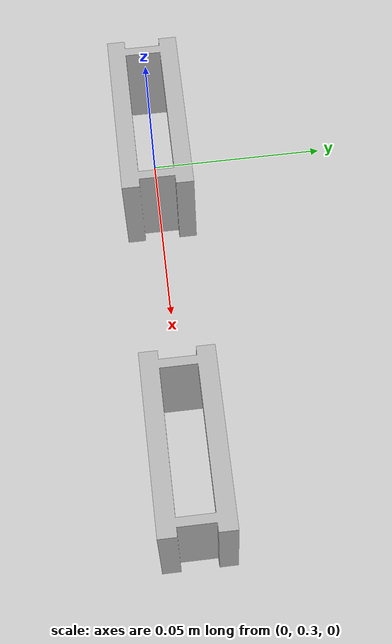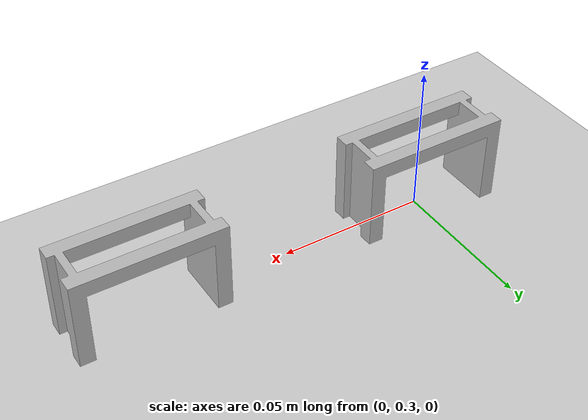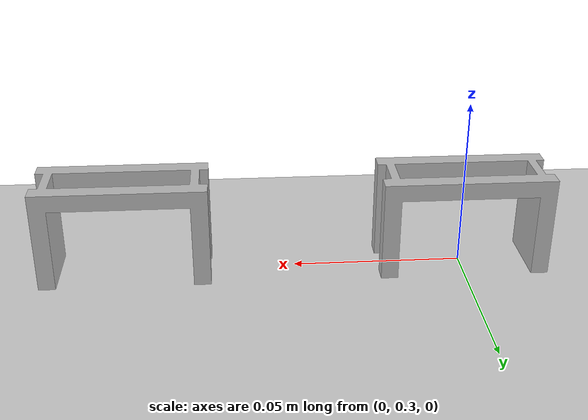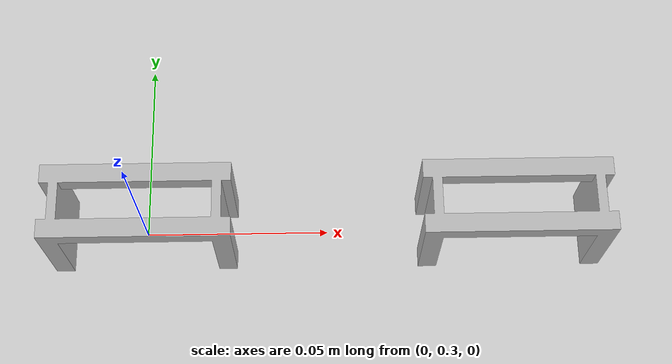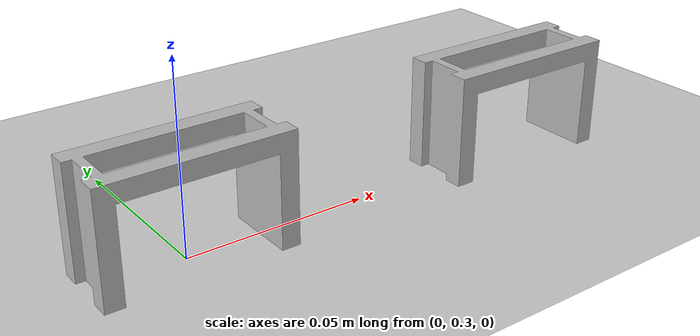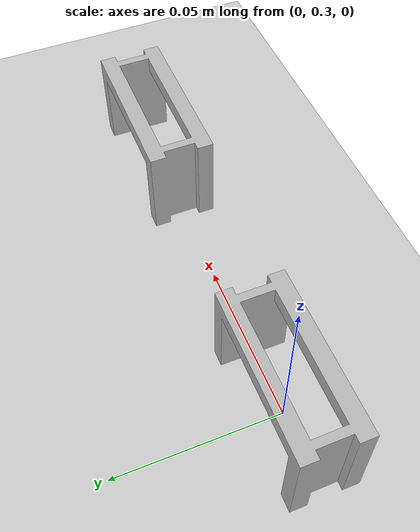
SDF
<?xml version="1.0" ?>
<sdf version="1.4">
  <world name="default">
    <include>
      <uri>model://ground_plane</uri>
    </include>
    <include>
      <uri>model://sun</uri>
    </include>

    <include>
      <uri>model://block_for_arm</uri>
      <name>number_board</name>
      <pose>0 0.3 0 0 0 0</pose>
      <static>false</static>
    </include>

    <include>
      <uri>model://block_for_arm</uri>
      <name>number_board</name>
      <pose>0.1 0.3 0 0 0 0</pose>
      <static>false</static>
    </include>

  </world>
</sdf>

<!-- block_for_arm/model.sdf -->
<sdf version="1.5">
  <model name="block_for_arm">
    <static>0</static>
    <link name="link">
      <inertial>
        <mass>0.01</mass>
        <pose> 0 0 0.015 0 0</pose>
        <inertia>
          <ixx>0.01227</ixx>
          <ixy>0.0</ixy>
          <ixz>0.0</ixz>
          <iyy>0.03799</iyy>
          <iyz>0.0</iyz>
          <izz>0.03551</izz>
        </inertia>
      </inertial>
      <collision name="collision">
        <geometry>
          <mesh>
             <scale>0.001 0.001 0.001</scale>
             <uri>model://block_for_arm/meshes/block.stl</uri>
           </mesh>
        </geometry>
        <surface>
        <friction>
          <ode>
            <mu>1</mu>
            <mu2>1</mu2>
          </ode>
        </friction>
      </surface>
      </collision>
      <visual name="visual">
         <geometry>
           <mesh>
             <scale>0.001 0.001 0.001</scale>
             <uri>model://block_for_arm/meshes/block.stl</uri>
           </mesh>
         </geometry>
       </visual>
    </link>
  </model>
</sdf>
